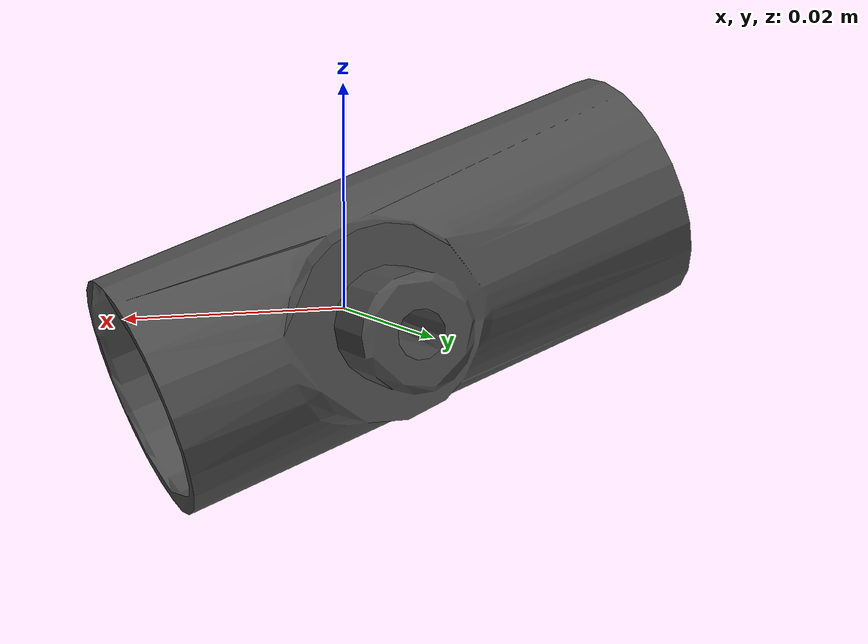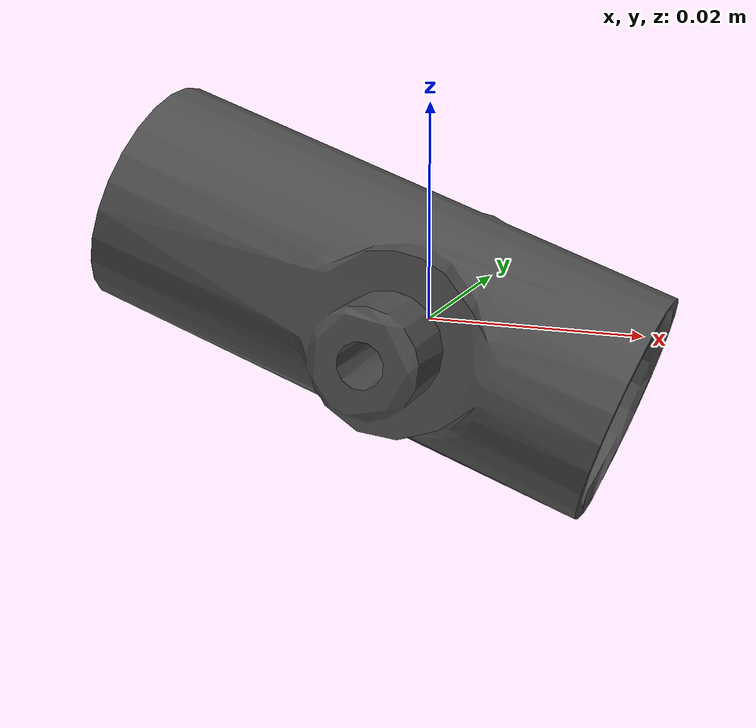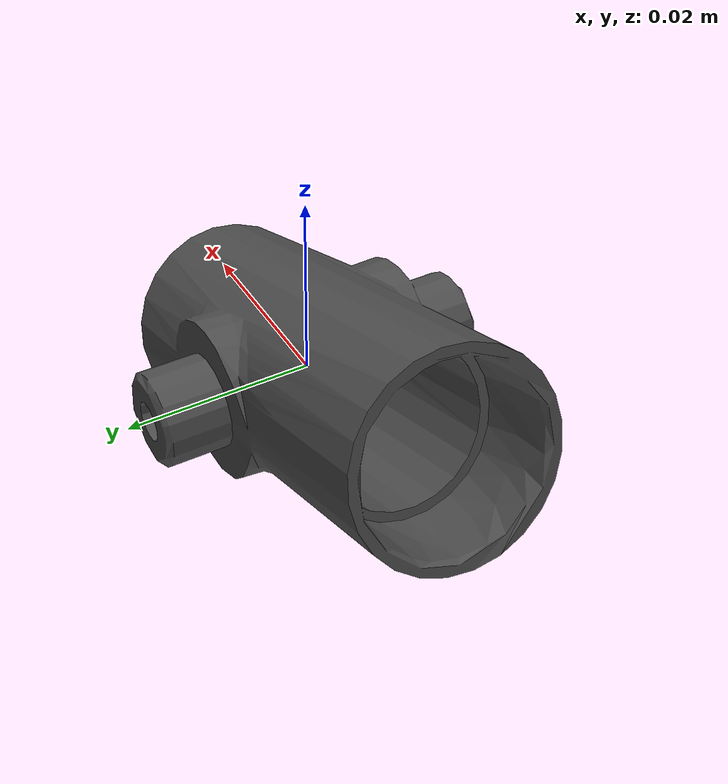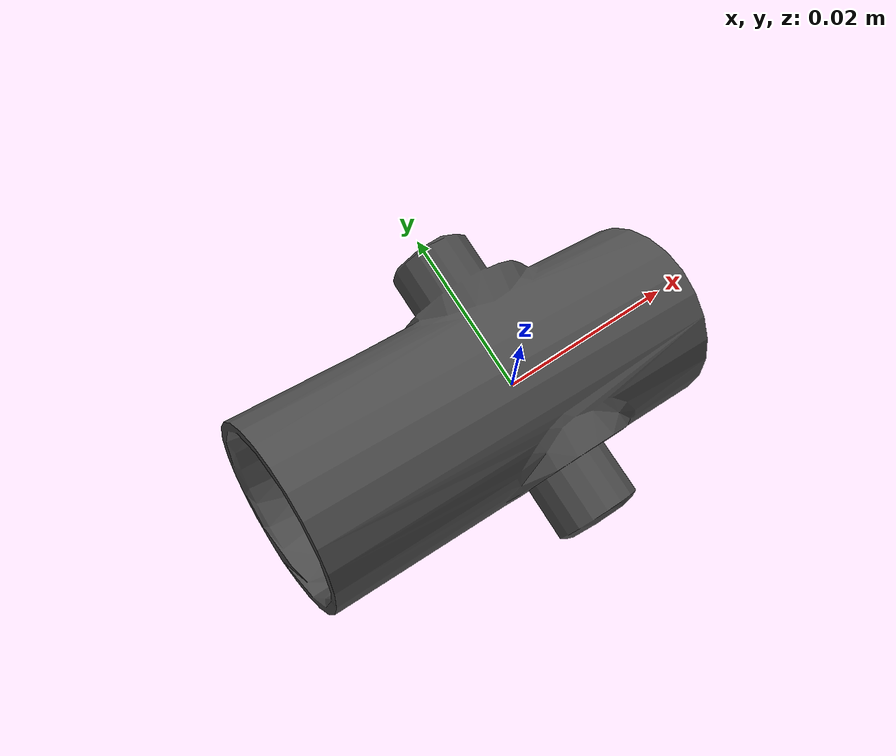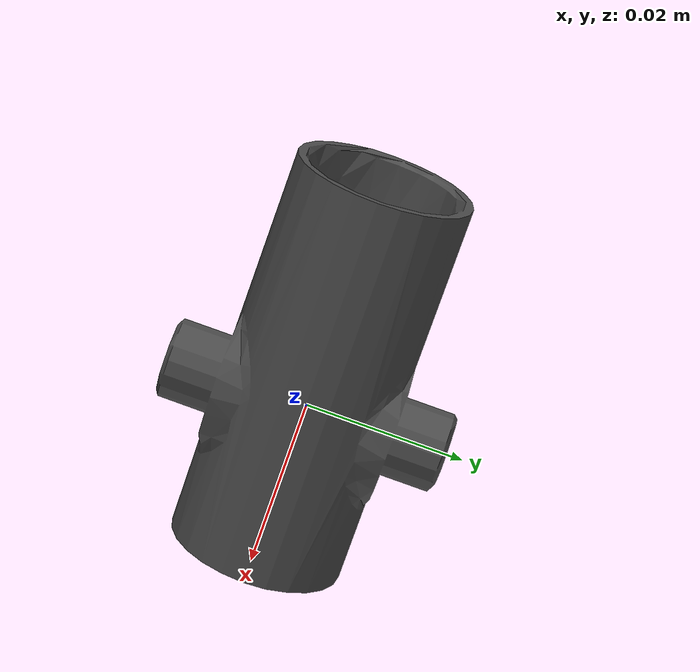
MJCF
<mujoco model="leg_6_link">
  <default>
    <default class="visual">
      <geom group="2" type="mesh" contype="0" conaffinity="0"/>
    </default>
    <default class="collision">
      <geom group="3" type="mesh"/>
    </default>
  </default>
  <asset>
    <material name="mtl_leg_6_link" specular="0.20000000000000004" shininess="1.0" rgba="0.29803922 0.29803922 0.29803922 1.0"/>
    <mesh file="leg_6_link.obj"/>
  </asset>
  <worldbody>
    <body name="leg_6_link">
      <geom material="mtl_leg_6_link" mesh="leg_6_link" class="visual"/>
      <geom mesh="leg_6_link" class="collision"/>
    </body>
  </worldbody>
</mujoco>
